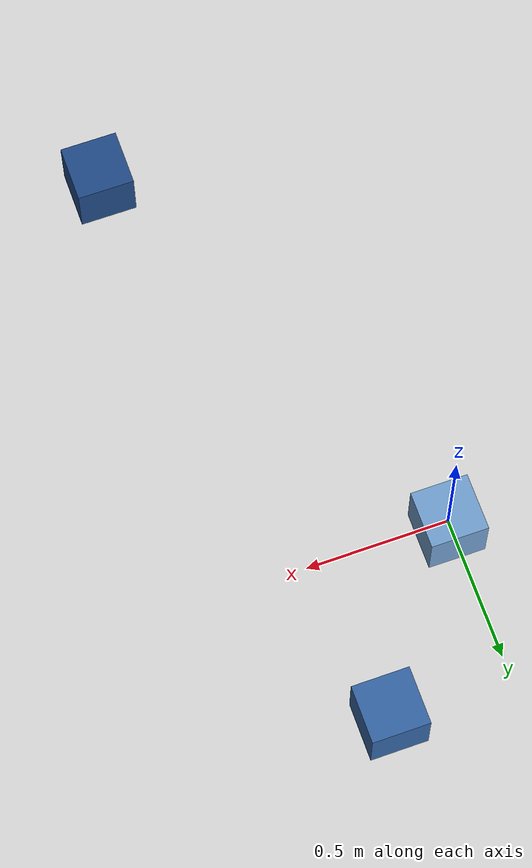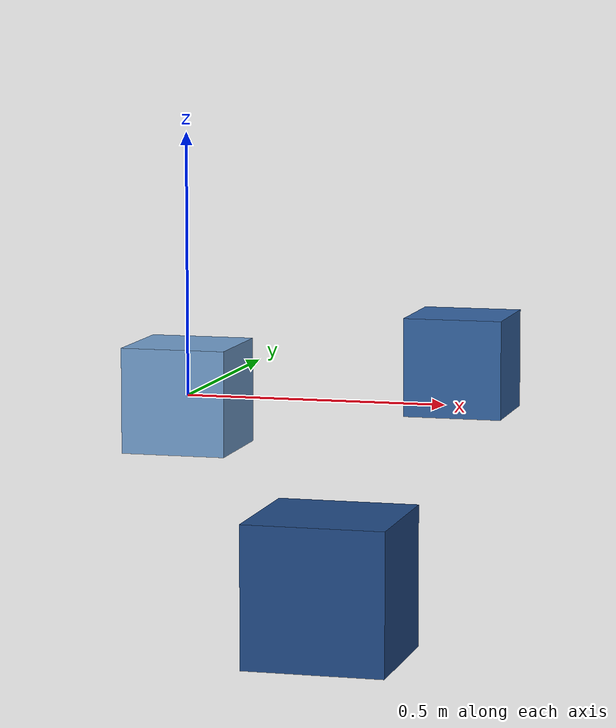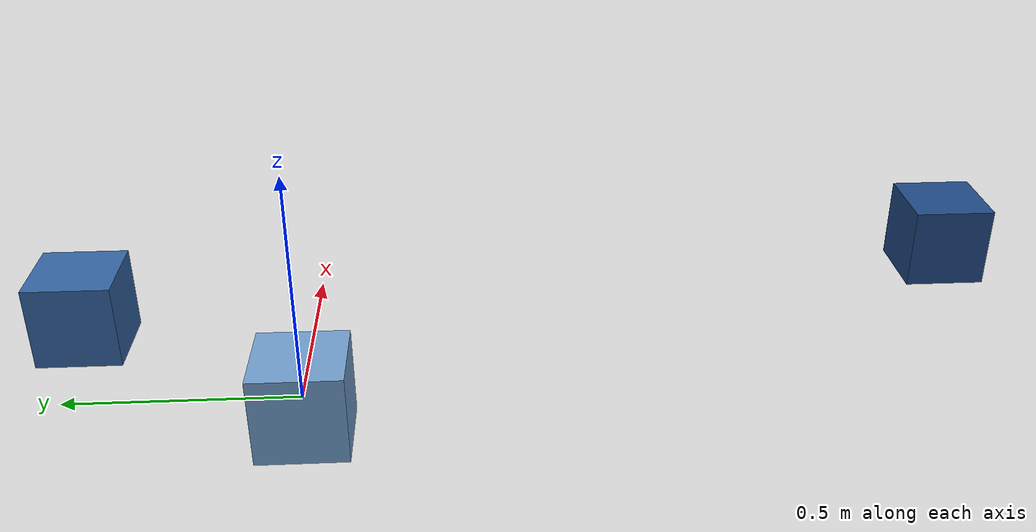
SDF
<?xml version='1.0'?>
<sdf version='1.7'>
  <model name='squares'>
    <link name='link'>
      <inertial>
        <mass>1</mass>
        <inertia>
          <ixx>0.166667</ixx>
          <ixy>0</ixy>
          <ixz>0</ixz>
          <iyy>0.166667</iyy>
          <iyz>0</iyz>
          <izz>0.166667</izz>
        </inertia>
        <pose>0 0 0 0 -0 0</pose>
      </inertial>
      <self_collide>0</self_collide>
      <enable_wind>0</enable_wind>
      <kinematic>0</kinematic>
      <pose>0 0 0 0 -0 0</pose>
      <gravity>1</gravity>
      <visual name='visual'>
        <geometry>
          <box>
            <size>0.2 0.2 0.2</size>
          </box>
        </geometry>
        <material>
          <script>
            <name>Gazebo/Grey</name>
            <uri>file://media/materials/scripts/gazebo.material</uri>
          </script>
          <shader type='pixel'>
            <normal_map>__default__</normal_map>
          </shader>
          <ambient>0.447 0.624 0.812 1</ambient>
          <diffuse>0.447 0.624 0.812 1</diffuse>
          <specular>0.447 0.624 0.812 1</specular>
          <emissive>0.447 0.624 0.812 1</emissive>
        </material>
        <pose>0 0 0 0 -0 0</pose>
        <transparency>0</transparency>
        <cast_shadows>1</cast_shadows>
      </visual>
      <collision name='collision'>
        <laser_retro>0</laser_retro>
        <max_contacts>10</max_contacts>
        <pose>0 0 0 0 -0 0</pose>
        <geometry>
          <box>
            <size>0.213991 0.323363 0.296615</size>
          </box>
        </geometry>
        <surface>
          <friction>
            <ode>
              <mu>1</mu>
              <mu2>1</mu2>
              <fdir1>0 0 0</fdir1>
              <slip1>0</slip1>
              <slip2>0</slip2>
            </ode>
            <torsional>
              <coefficient>1</coefficient>
              <patch_radius>0</patch_radius>
              <surface_radius>0</surface_radius>
              <use_patch_radius>1</use_patch_radius>
              <ode>
                <slip>0</slip>
              </ode>
            </torsional>
          </friction>
          <bounce>
            <restitution_coefficient>0</restitution_coefficient>
            <threshold>1e+06</threshold>
          </bounce>
          <contact>
            <collide_without_contact>0</collide_without_contact>
            <collide_without_contact_bitmask>1</collide_without_contact_bitmask>
            <collide_bitmask>1</collide_bitmask>
            <ode>
              <soft_cfm>0</soft_cfm>
              <soft_erp>0.2</soft_erp>
              <kp>1e+13</kp>
              <kd>1</kd>
              <max_vel>0.01</max_vel>
              <min_depth>0</min_depth>
            </ode>
            <bullet>
              <split_impulse>1</split_impulse>
              <split_impulse_penetration_threshold>-0.01</split_impulse_penetration_threshold>
              <soft_cfm>0</soft_cfm>
              <soft_erp>0.2</soft_erp>
              <kp>1e+13</kp>
              <kd>1</kd>
            </bullet>
          </contact>
        </surface>
      </collision>
    </link>
    <link name='link_clone'>
      <inertial>
        <mass>1</mass>
        <inertia>
          <ixx>0.166667</ixx>
          <ixy>0</ixy>
          <ixz>0</ixz>
          <iyy>0.166667</iyy>
          <iyz>0</iyz>
          <izz>0.166667</izz>
        </inertia>
        <pose>0 0 0 0 -0 0</pose>
      </inertial>
      <self_collide>0</self_collide>
      <enable_wind>0</enable_wind>
      <kinematic>0</kinematic>
      <pose>0.413073 0.557788 0 0 -0 0</pose>
      <gravity>1</gravity>
      <visual name='visual'>
        <geometry>
          <box>
            <size>0.2 0.2 0.2</size>
          </box>
        </geometry>
        <material>
          <script>
            <name>Gazebo/Grey</name>
            <uri>file://media/materials/scripts/gazebo.material</uri>
          </script>
          <shader type='pixel'>
            <normal_map>__default__</normal_map>
          </shader>
          <ambient>0.204 0.396 0.643 1</ambient>
          <diffuse>0.204 0.396 0.643 1</diffuse>
          <specular>0.204 0.396 0.643 1</specular>
          <emissive>0.447 0.624 0.812 1</emissive>
        </material>
        <pose>0 0 0 0 -0 0</pose>
        <transparency>0</transparency>
        <cast_shadows>1</cast_shadows>
      </visual>
      <collision name='collision'>
        <laser_retro>0</laser_retro>
        <max_contacts>10</max_contacts>
        <pose>0 0 0 0 -0 0</pose>
        <geometry>
          <box>
            <size>0.213991 0.323363 0.296615</size>
          </box>
        </geometry>
        <surface>
          <friction>
            <ode>
              <mu>1</mu>
              <mu2>1</mu2>
              <fdir1>0 0 0</fdir1>
              <slip1>0</slip1>
              <slip2>0</slip2>
            </ode>
            <torsional>
              <coefficient>1</coefficient>
              <patch_radius>0</patch_radius>
              <surface_radius>0</surface_radius>
              <use_patch_radius>1</use_patch_radius>
              <ode>
                <slip>0</slip>
              </ode>
            </torsional>
          </friction>
          <bounce>
            <restitution_coefficient>0</restitution_coefficient>
            <threshold>1e+06</threshold>
          </bounce>
          <contact>
            <collide_without_contact>0</collide_without_contact>
            <collide_without_contact_bitmask>1</collide_without_contact_bitmask>
            <collide_bitmask>1</collide_bitmask>
            <ode>
              <soft_cfm>0</soft_cfm>
              <soft_erp>0.2</soft_erp>
              <kp>1e+13</kp>
              <kd>1</kd>
              <max_vel>0.01</max_vel>
              <min_depth>0</min_depth>
            </ode>
            <bullet>
              <split_impulse>1</split_impulse>
              <split_impulse_penetration_threshold>-0.01</split_impulse_penetration_threshold>
              <soft_cfm>0</soft_cfm>
              <soft_erp>0.2</soft_erp>
              <kp>1e+13</kp>
              <kd>1</kd>
            </bullet>
          </contact>
        </surface>
      </collision>
    </link>
    <link name='link_clone_0'>
      <inertial>
        <mass>1</mass>
        <inertia>
          <ixx>0.166667</ixx>
          <ixy>0</ixy>
          <ixz>0</ixz>
          <iyy>0.166667</iyy>
          <iyz>0</iyz>
          <izz>0.166667</izz>
        </inertia>
        <pose>0 0 0 0 -0 0</pose>
      </inertial>
      <self_collide>0</self_collide>
      <enable_wind>0</enable_wind>
      <kinematic>0</kinematic>
      <pose>0.69424 -1.60075 0 0 -0 0</pose>
      <gravity>1</gravity>
      <visual name='visual'>
        <geometry>
          <box>
            <size>0.2 0.2 0.2</size>
          </box>
        </geometry>
        <material>
          <script>
            <name>Gazebo/Grey</name>
            <uri>file://media/materials/scripts/gazebo.material</uri>
          </script>
          <shader type='pixel'>
            <normal_map>__default__</normal_map>
          </shader>
          <ambient>0.125 0.29 0.529 1</ambient>
          <diffuse>0.125 0.29 0.529 1</diffuse>
          <specular>0.125 0.29 0.529 1</specular>
          <emissive>0.447 0.624 0.812 1</emissive>
        </material>
        <pose>0 0 0 0 -0 0</pose>
        <transparency>0</transparency>
        <cast_shadows>1</cast_shadows>
      </visual>
      <collision name='collision'>
        <laser_retro>0</laser_retro>
        <max_contacts>10</max_contacts>
        <pose>0 0 0 0 -0 0</pose>
        <geometry>
          <box>
            <size>0.213991 0.323363 0.296615</size>
          </box>
        </geometry>
        <surface>
          <friction>
            <ode>
              <mu>1</mu>
              <mu2>1</mu2>
              <fdir1>0 0 0</fdir1>
              <slip1>0</slip1>
              <slip2>0</slip2>
            </ode>
            <torsional>
              <coefficient>1</coefficient>
              <patch_radius>0</patch_radius>
              <surface_radius>0</surface_radius>
              <use_patch_radius>1</use_patch_radius>
              <ode>
                <slip>0</slip>
              </ode>
            </torsional>
          </friction>
          <bounce>
            <restitution_coefficient>0</restitution_coefficient>
            <threshold>1e+06</threshold>
          </bounce>
          <contact>
            <collide_without_contact>0</collide_without_contact>
            <collide_without_contact_bitmask>1</collide_without_contact_bitmask>
            <collide_bitmask>1</collide_bitmask>
            <ode>
              <soft_cfm>0</soft_cfm>
              <soft_erp>0.2</soft_erp>
              <kp>1e+13</kp>
              <kd>1</kd>
              <max_vel>0.01</max_vel>
              <min_depth>0</min_depth>
            </ode>
            <bullet>
              <split_impulse>1</split_impulse>
              <split_impulse_penetration_threshold>-0.01</split_impulse_penetration_threshold>
              <soft_cfm>0</soft_cfm>
              <soft_erp>0.2</soft_erp>
              <kp>1e+13</kp>
              <kd>1</kd>
            </bullet>
          </contact>
        </surface>
      </collision>
    </link>
    <static>0</static>
    <allow_auto_disable>1</allow_auto_disable>
  </model>
</sdf>
